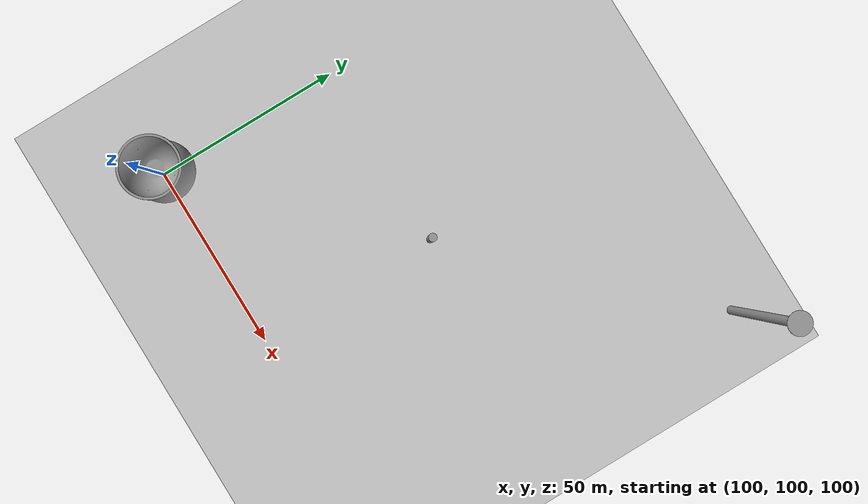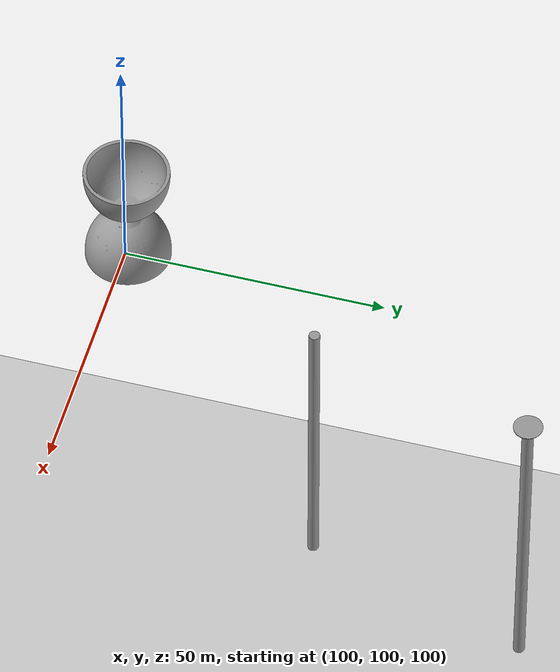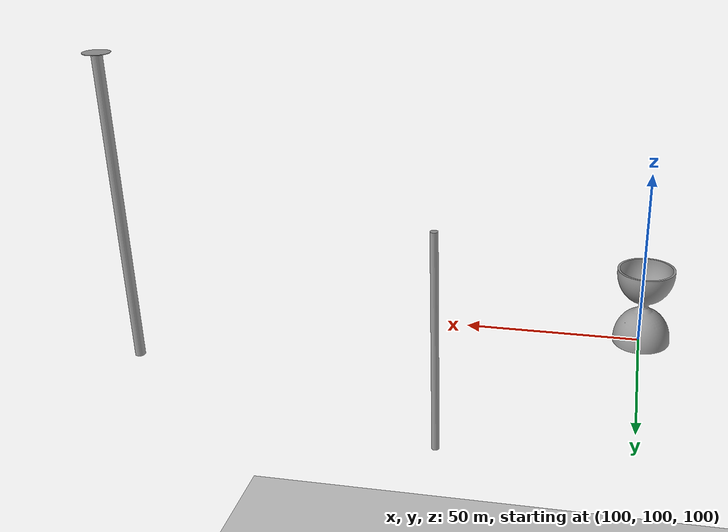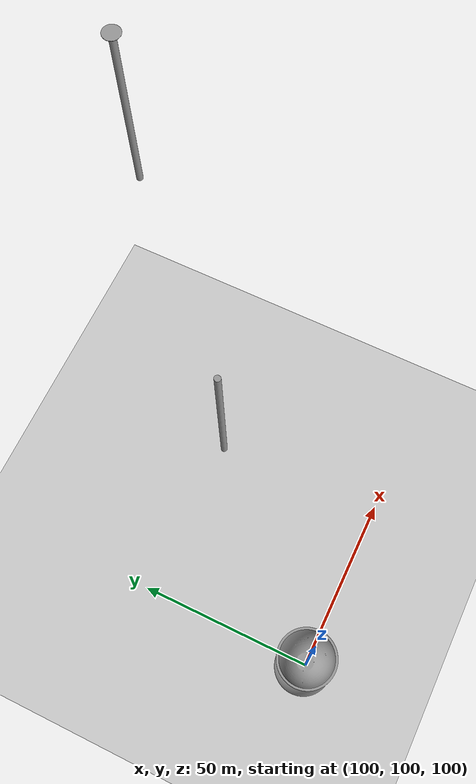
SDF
<?xml version="1.0" ?>
<sdf version="1.5">
  <world name="default">
    <!-- A global light source -->
    <include>
      <uri>model://sun</uri>
    </include>
    <!-- A ground plane -->
    <include>
      <uri>model://ground_plane</uri>
    </include>
    <!-- Custom models -->
    <include>
      <pose>200 200 200 0 0 0</pose>
      <uri>model://side_pos</uri>
    </include>
    <include>
    <pose>200 200 200 0 0 0</pose>
      <uri>model://side_neg</uri>
    </include>
    <include>
      <uri>model://stick_right</uri>
    </include>
    <include>
      <uri>model://stick_left</uri>
    </include>
    <include>
      <uri>model://my_diabolo</uri>
    </include>
  </world>
</sdf>

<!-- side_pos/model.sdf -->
<sdf version='1.7'><model name='side_pos'>
  <pose>0 0 7 0 0 0</pose>
  <link name='link_1'>
    <turnGravityOff>1</turnGravityOff>
    <gravity>0</gravity>
    <visual name='visual'>
      <geometry>
        <cylinder><radius>2.5</radius><length>0.1</length></cylinder>
      </geometry>
      <material>
        <script>
          <name>Gazebo/Grey</name>
          <uri>file://media/materials/scripts/gazebo.material</uri>
        </script>
      </material>
    </visual>
  </link>
  <plugin name="model_push" filename="libmodel_revolve_z.so"/>
</model>
</sdf>

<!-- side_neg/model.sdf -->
<sdf version='1.7'><model name='side_neg'>
  <pose>0 0 7 0 0 0</pose>
  <link name='link_1'>
    <turnGravityOff>1</turnGravityOff>
    <gravity>0</gravity>
    <visual name='visual'>
      <geometry>
        <cylinder><radius>2.5</radius><length>0.1</length></cylinder>
      </geometry>
      <material>
        <script>
          <name>Gazebo/Grey</name>
          <uri>file://media/materials/scripts/gazebo.material</uri>
        </script>
      </material>
    </visual>
  </link>
  <plugin name="model_push" filename="libmodel_revolve_z_opp.so"/>
</model>
</sdf>

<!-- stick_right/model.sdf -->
<sdf version='1.7'><model name='stick_right'>
  <pose>200 200 200 0 0 0</pose>
  <link name="link">
      <gravity>0</gravity>
      <collision name="collision">
        <geometry>
          <mesh>
            <uri>model://stick_right/meshes/tinker.obj</uri>
          </mesh>
        </geometry>
      </collision>
      <visual name="visual">
        <geometry>
          <mesh>
            <uri>model://stick_right/meshes/tinker.obj</uri>
          </mesh>
        </geometry>
        <material>
          <script>
            <uri>file://media/materials/scripts/gazebo.material</uri>
            <name>Gazebo/Grey</name>
          </script>
        </material>
      </visual>
    </link>
</model>
</sdf>

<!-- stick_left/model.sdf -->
<sdf version='1.7'><model name='stick_left'>
  <pose>150 150 150 0 0 0</pose>
  <link name="link">
      <gravity>0</gravity>
      <collision name="collision">
        <geometry>
          <mesh>
            <uri>model://stick_left/meshes/tinker.obj</uri>
          </mesh>
        </geometry>
      </collision>
      <visual name="visual">
        <geometry>
          <mesh>
            <uri>model://stick_left/meshes/tinker.obj</uri>
          </mesh>
        </geometry>
        <material>
          <script>
            <uri>file://media/materials/scripts/gazebo.material</uri>
            <name>Gazebo/Grey</name>
          </script>
        </material>
      </visual>
    </link>
</model>
</sdf>

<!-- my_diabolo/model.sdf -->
<sdf version="1.7">
  <model name="my_diabolo">
    <pose>100 100 100 0 0 0</pose>
    <link name="link">
      <gravity>0</gravity>
      <collision name="collision">
        <geometry>
          <mesh>
            <uri>model://my_diabolo/meshes/BlueDiabolo.obj</uri>
            <scale>0.127 0.127 0.15</scale>
          </mesh>
        </geometry>
      </collision>
      <visual name="visual">
        <geometry>
          <mesh>
            <uri>model://my_diabolo/meshes/BlueDiabolo.obj</uri>
            <scale>0.127 0.127 0.15</scale>
          </mesh>
        </geometry>
        <material>
          <script>
            <uri>file://media/materials/scripts/gazebo.material</uri>
            <name>Gazebo/Grey</name>
          </script>
        </material>
      </visual>
    </link>
  </model>
</sdf>
